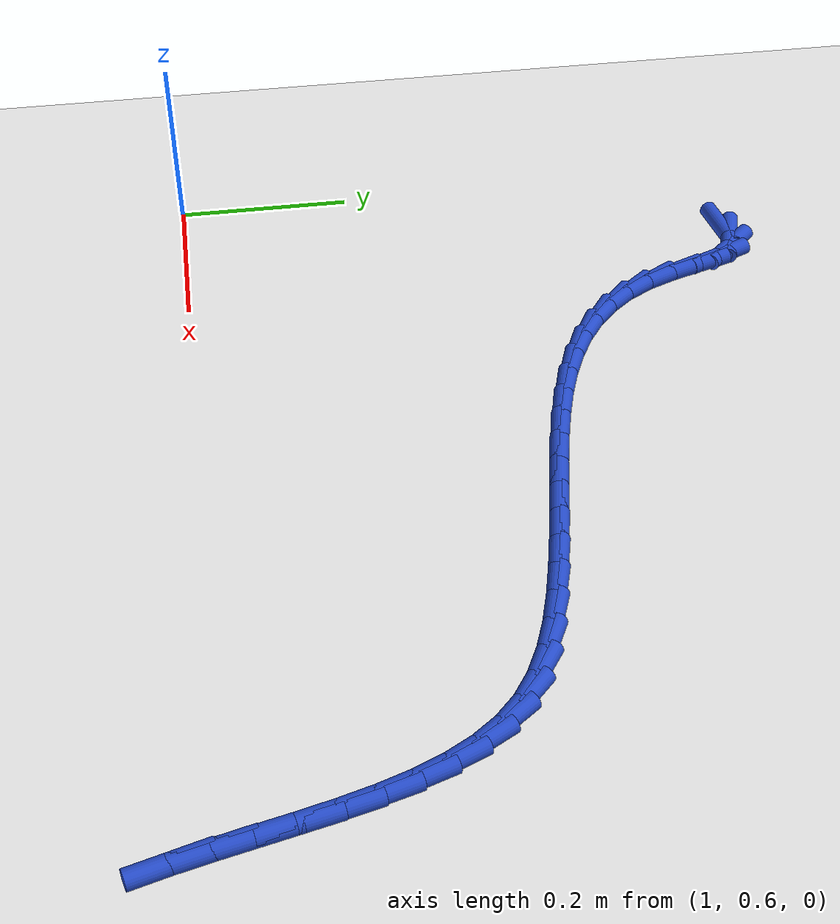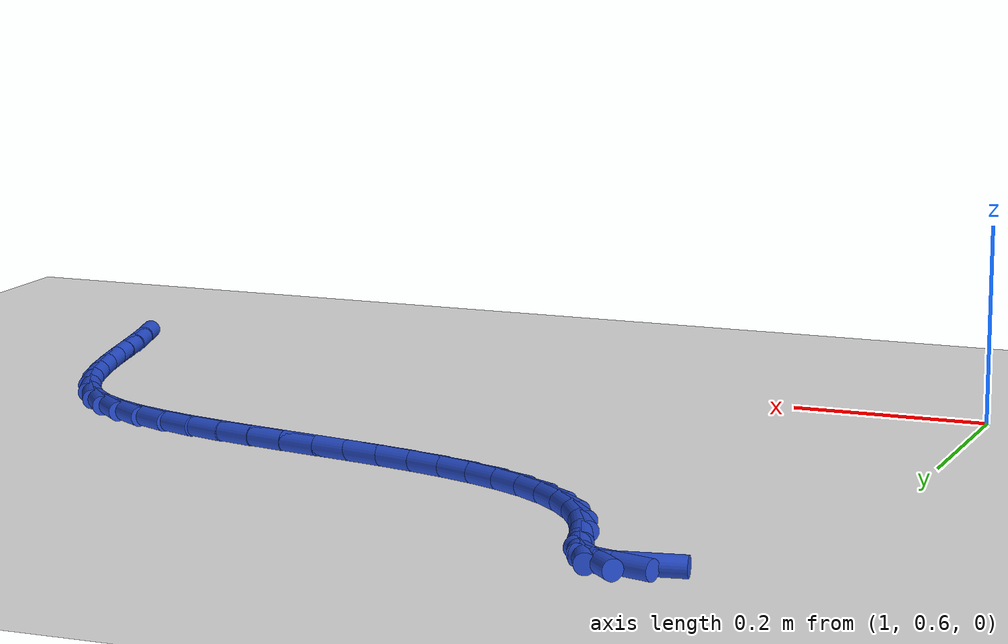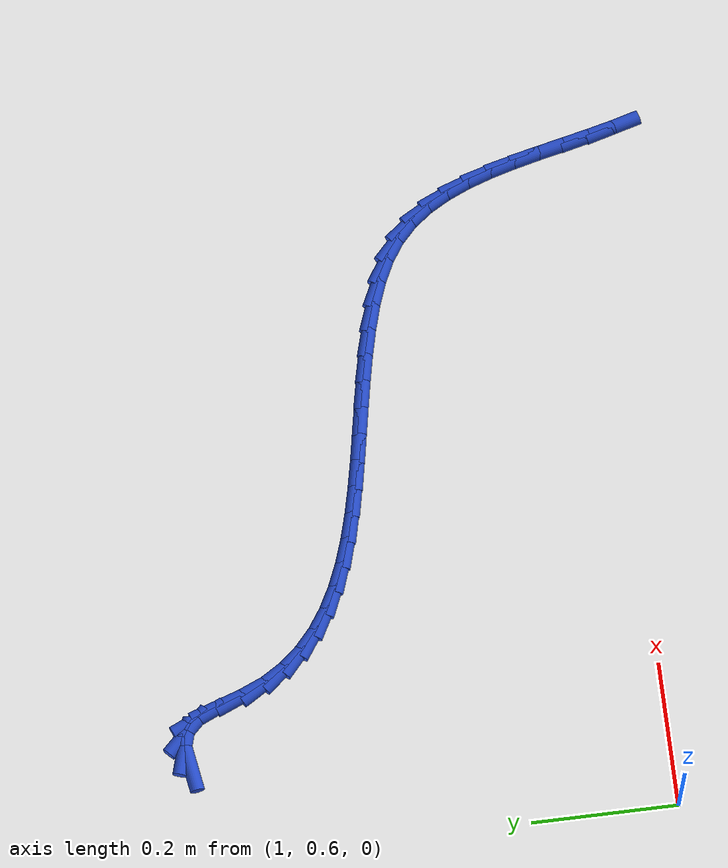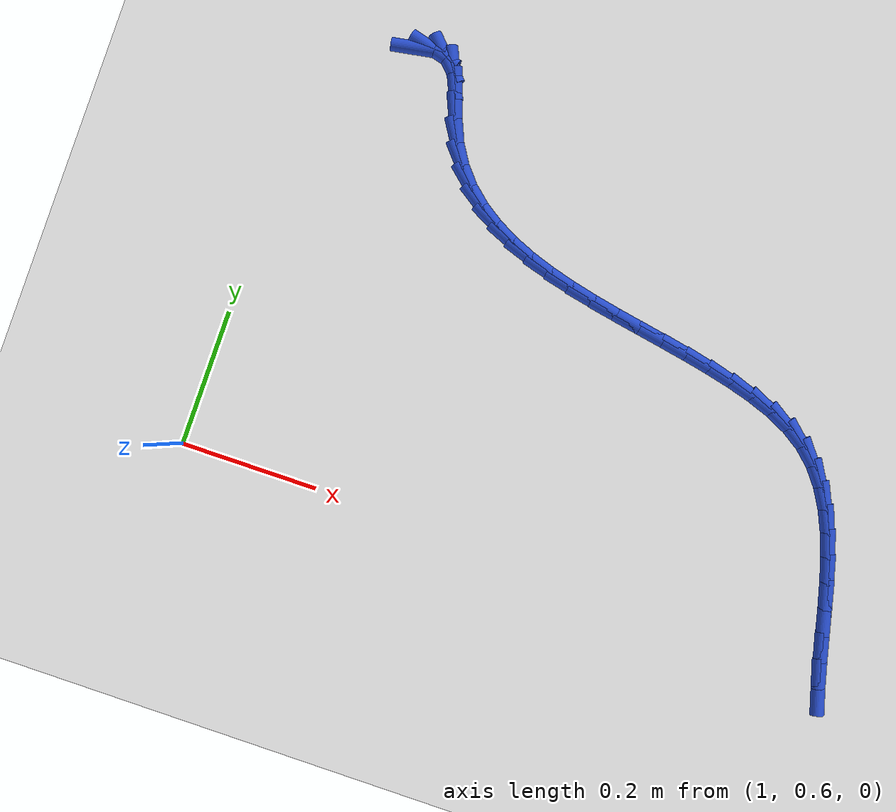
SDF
<sdf version="1.6">
 <world name="default">
  <model name="ground_plane">
   <static>1</static>
   <link name="link">
    <collision name="collision">
     <geometry><plane><normal>0 0 1</normal><size>100 100</size></plane></geometry>
     <surface><friction><ode><mu>100</mu><mu2>50</mu2></ode></friction></surface>
    </collision>
    <visual name="visual">
     <cast_shadows>0</cast_shadows>
     <geometry><plane><normal>0 0 1</normal><size>100 100</size></plane></geometry>
     <material>
      <script><uri>file://media/materials/scripts/gazebo.material</uri><name>Gazebo/WhiteGlow</name></script>
     </material>
    </visual>
   </link>
  </model>
  <model name="line">
   <link name="link_50">
    <pose>1.1366943268793017 1.2480605219539709 0.01 0 1.57 0.1632043211630677</pose>
    <collision name="collision">
     <geometry><cylinder><radius>0.01</radius><length>0.08</length></cylinder></geometry>
    </collision>
    <visual name="visual">
     <material>
      <script><name>Gazebo/Blue</name><uri>file://media/materials/scripts/gazebo.material</uri></script>
     </material>
     <geometry><cylinder><radius>0.01</radius><length>0.08</length></cylinder></geometry>
    </visual>
   </link>
   <link name="link_51">
    <pose>1.1600082485734464 1.2518996008520658 0.01 0 1.57 -0.28168845116691477</pose>
    <collision name="collision">
     <geometry><cylinder><radius>0.01</radius><length>0.08</length></cylinder></geometry>
    </collision>
    <visual name="visual">
     <material>
      <script><name>Gazebo/Blue</name><uri>file://media/materials/scripts/gazebo.material</uri></script>
     </material>
     <geometry><cylinder><radius>0.01</radius><length>0.08</length></cylinder></geometry>
    </visual>
   </link>
   <link name="link_52">
    <pose>1.1800278871083427 1.2461062521797537 0.01 0 1.57 -0.7993350156907365</pose>
    <collision name="collision">
     <geometry><cylinder><radius>0.01</radius><length>0.08</length></cylinder></geometry>
    </collision>
    <visual name="visual">
     <material>
      <script><name>Gazebo/Blue</name><uri>file://media/materials/scripts/gazebo.material</uri></script>
     </material>
     <geometry><cylinder><radius>0.01</radius><length>0.08</length></cylinder></geometry>
    </visual>
   </link>
   <link name="link_53">
    <pose>1.1963126050058341 1.2293611730735412 0.01 0 1.57 -1.1512723161892442</pose>
    <collision name="collision">
     <geometry><cylinder><radius>0.01</radius><length>0.08</length></cylinder></geometry>
    </collision>
    <visual name="visual">
     <material>
      <script><name>Gazebo/Blue</name><uri>file://media/materials/scripts/gazebo.material</uri></script>
     </material>
     <geometry><cylinder><radius>0.01</radius><length>0.08</length></cylinder></geometry>
    </visual>
   </link>
   <link name="link_54">
    <pose>1.2088474479087175 1.2012562546108616 0.01 0 1.57 -1.2470230080012707</pose>
    <collision name="collision">
     <geometry><cylinder><radius>0.01</radius><length>0.08</length></cylinder></geometry>
    </collision>
    <visual name="visual">
     <material>
      <script><name>Gazebo/Blue</name><uri>file://media/materials/scripts/gazebo.material</uri></script>
     </material>
     <geometry><cylinder><radius>0.01</radius><length>0.08</length></cylinder></geometry>
    </visual>
   </link>
   <link name="link_55">
    <pose>1.2203006594684038 1.167126894358867 0.01 0 1.57 -1.170710706884832</pose>
    <collision name="collision">
     <geometry><cylinder><radius>0.01</radius><length>0.08</length></cylinder></geometry>
    </collision>
    <visual name="visual">
     <material>
      <script><name>Gazebo/Blue</name><uri>file://media/materials/scripts/gazebo.material</uri></script>
     </material>
     <geometry><cylinder><radius>0.01</radius><length>0.08</length></cylinder></geometry>
    </visual>
   </link>
   <link name="link_56">
    <pose>1.2342181811908284 1.1342167162110688 0.01 0 1.57 -1.020286848414421</pose>
    <collision name="collision">
     <geometry><cylinder><radius>0.01</radius><length>0.08</length></cylinder></geometry>
    </collision>
    <visual name="visual">
     <material>
      <script><name>Gazebo/Blue</name><uri>file://media/materials/scripts/gazebo.material</uri></script>
     </material>
     <geometry><cylinder><radius>0.01</radius><length>0.08</length></cylinder></geometry>
    </visual>
   </link>
   <link name="link_57">
    <pose>1.2519129534556381 1.1053887802179643 0.01 0 1.57 -0.8687714558804847</pose>
    <collision name="collision">
     <geometry><cylinder><radius>0.01</radius><length>0.08</length></cylinder></geometry>
    </collision>
    <visual name="visual">
     <material>
      <script><name>Gazebo/Blue</name><uri>file://media/materials/scripts/gazebo.material</uri></script>
     </material>
     <geometry><cylinder><radius>0.01</radius><length>0.08</length></cylinder></geometry>
    </visual>
   </link>
   <link name="link_58">
    <pose>1.27308937787317 1.0803503157168026 0.01 0 1.57 -0.7263460380362501</pose>
    <collision name="collision">
     <geometry><cylinder><radius>0.01</radius><length>0.08</length></cylinder></geometry>
    </collision>
    <visual name="visual">
     <material>
      <script><name>Gazebo/Blue</name><uri>file://media/materials/scripts/gazebo.material</uri></script>
     </material>
     <geometry><cylinder><radius>0.01</radius><length>0.08</length></cylinder></geometry>
    </visual>
   </link>
   <link name="link_59">
    <pose>1.297416472338468 1.0587391318868649 0.01 0 1.57 -0.5993468259165707</pose>
    <collision name="collision">
     <geometry><cylinder><radius>0.01</radius><length>0.08</length></cylinder></geometry>
    </collision>
    <visual name="visual">
     <material>
      <script><name>Gazebo/Blue</name><uri>file://media/materials/scripts/gazebo.material</uri></script>
     </material>
     <geometry><cylinder><radius>0.01</radius><length>0.08</length></cylinder></geometry>
    </visual>
   </link>
   <link name="link_60">
    <pose>1.3245632547465773 1.0401930379074333 0.01 0 1.57 -0.4909446182707565</pose>
    <collision name="collision">
     <geometry><cylinder><radius>0.01</radius><length>0.08</length></cylinder></geometry>
    </collision>
    <visual name="visual">
     <material>
      <script><name>Gazebo/Blue</name><uri>file://media/materials/scripts/gazebo.material</uri></script>
     </material>
     <geometry><cylinder><radius>0.01</radius><length>0.08</length></cylinder></geometry>
    </visual>
   </link>
   <link name="link_61">
    <pose>1.3541987429925422 1.02434984295779 0.01 0 1.57 -0.4016141087658761</pose>
    <collision name="collision">
     <geometry><cylinder><radius>0.01</radius><length>0.08</length></cylinder></geometry>
    </collision>
    <visual name="visual">
     <material>
      <script><name>Gazebo/Blue</name><uri>file://media/materials/scripts/gazebo.material</uri></script>
     </material>
     <geometry><cylinder><radius>0.01</radius><length>0.08</length></cylinder></geometry>
    </visual>
   </link>
   <link name="link_62">
    <pose>1.3859919549714088 1.0108473562172167 0.01 0 1.57 -0.33022091602826725</pose>
    <collision name="collision">
     <geometry><cylinder><radius>0.01</radius><length>0.08</length></cylinder></geometry>
    </collision>
    <visual name="visual">
     <material>
      <script><name>Gazebo/Blue</name><uri>file://media/materials/scripts/gazebo.material</uri></script>
     </material>
     <geometry><cylinder><radius>0.01</radius><length>0.08</length></cylinder></geometry>
    </visual>
   </link>
   <link name="link_63">
    <pose>1.4196119085782217 0.999323386864995 0.01 0 1.57 -0.2749945384267629</pose>
    <collision name="collision">
     <geometry><cylinder><radius>0.01</radius><length>0.08</length></cylinder></geometry>
    </collision>
    <visual name="visual">
     <material>
      <script><name>Gazebo/Blue</name><uri>file://media/materials/scripts/gazebo.material</uri></script>
     </material>
     <geometry><cylinder><radius>0.01</radius><length>0.08</length></cylinder></geometry>
    </visual>
   </link>
   <link name="link_64">
    <pose>1.4547276217080256 0.9894157440804076 0.01 0 1.57 -0.23414210269544694</pose>
    <collision name="collision">
     <geometry><cylinder><radius>0.01</radius><length>0.08</length></cylinder></geometry>
    </collision>
    <visual name="visual">
     <material>
      <script><name>Gazebo/Blue</name><uri>file://media/materials/scripts/gazebo.material</uri></script>
     </material>
     <geometry><cylinder><radius>0.01</radius><length>0.08</length></cylinder></geometry>
    </visual>
   </link>
   <link name="link_65">
    <pose>1.4910081122558652 0.9807622370427358 0.01 0 1.57 -0.20615496180572326</pose>
    <collision name="collision">
     <geometry><cylinder><radius>0.01</radius><length>0.08</length></cylinder></geometry>
    </collision>
    <visual name="visual">
     <material>
      <script><name>Gazebo/Blue</name><uri>file://media/materials/scripts/gazebo.material</uri></script>
     </material>
     <geometry><cylinder><radius>0.01</radius><length>0.08</length></cylinder></geometry>
    </visual>
   </link>
   <link name="link_66">
    <pose>1.528122398116786 0.9730006749312611 0.01 0 1.57 -0.18993061982486512</pose>
    <collision name="collision">
     <geometry><cylinder><radius>0.01</radius><length>0.08</length></cylinder></geometry>
    </collision>
    <visual name="visual">
     <material>
      <script><name>Gazebo/Blue</name><uri>file://media/materials/scripts/gazebo.material</uri></script>
     </material>
     <geometry><cylinder><radius>0.01</radius><length>0.08</length></cylinder></geometry>
    </visual>
   </link>
   <link name="link_67">
    <pose>1.5657394971858325 0.9657688669252662 0.01 0 1.57 -0.18480645672734122</pose>
    <collision name="collision">
     <geometry><cylinder><radius>0.01</radius><length>0.08</length></cylinder></geometry>
    </collision>
    <visual name="visual">
     <material>
      <script><name>Gazebo/Blue</name><uri>file://media/materials/scripts/gazebo.material</uri></script>
     </material>
     <geometry><cylinder><radius>0.01</radius><length>0.08</length></cylinder></geometry>
    </visual>
   </link>
   <link name="link_68">
    <pose>1.60352842735805 0.9587046222040325 0.01 0 1.57 -0.1905616601111022</pose>
    <collision name="collision">
     <geometry><cylinder><radius>0.01</radius><length>0.08</length></cylinder></geometry>
    </collision>
    <visual name="visual">
     <material>
      <script><name>Gazebo/Blue</name><uri>file://media/materials/scripts/gazebo.material</uri></script>
     </material>
     <geometry><cylinder><radius>0.01</radius><length>0.08</length></cylinder></geometry>
    </visual>
   </link>
   <link name="link_69">
    <pose>1.6411582065284833 0.951445749946842 0.01 0 1.57 -0.20741417829386574</pose>
    <collision name="collision">
     <geometry><cylinder><radius>0.01</radius><length>0.08</length></cylinder></geometry>
    </collision>
    <visual name="visual">
     <material>
      <script><name>Gazebo/Blue</name><uri>file://media/materials/scripts/gazebo.material</uri></script>
     </material>
     <geometry><cylinder><radius>0.01</radius><length>0.08</length></cylinder></geometry>
    </visual>
   </link>
   <link name="link_70">
    <pose>1.678297852592178 0.9436300593329772 0.01 0 1.57 -0.23604567205010119</pose>
    <collision name="collision">
     <geometry><cylinder><radius>0.01</radius><length>0.08</length></cylinder></geometry>
    </collision>
    <visual name="visual">
     <material>
      <script><name>Gazebo/Blue</name><uri>file://media/materials/scripts/gazebo.material</uri></script>
     </material>
     <geometry><cylinder><radius>0.01</radius><length>0.08</length></cylinder></geometry>
    </visual>
   </link>
   <link name="link_71">
    <pose>1.7146153330380787 0.9348946304759581 0.01 0 1.57 -0.2807157546478752</pose>
    <collision name="collision">
     <geometry><cylinder><radius>0.01</radius><length>0.08</length></cylinder></geometry>
    </collision>
    <visual name="visual">
     <material>
      <script><name>Gazebo/Blue</name><uri>file://media/materials/scripts/gazebo.material</uri></script>
     </material>
     <geometry><cylinder><radius>0.01</radius><length>0.08</length></cylinder></geometry>
    </visual>
   </link>
   <link name="link_72">
    <pose>1.7496559353815317 0.9247913937854075 0.01 0 1.57 -0.35027326022431576</pose>
    <collision name="collision">
     <geometry><cylinder><radius>0.01</radius><length>0.08</length></cylinder></geometry>
    </collision>
    <visual name="visual">
     <material>
      <script><name>Gazebo/Blue</name><uri>file://media/materials/scripts/gazebo.material</uri></script>
     </material>
     <geometry><cylinder><radius>0.01</radius><length>0.08</length></cylinder></geometry>
    </visual>
   </link>
   <link name="link_73">
    <pose>1.7827290250065377 0.9127085308614429 0.01 0 1.57 -0.450366587782036</pose>
    <collision name="collision">
     <geometry><cylinder><radius>0.01</radius><length>0.08</length></cylinder></geometry>
    </collision>
    <visual name="visual">
     <material>
      <script><name>Gazebo/Blue</name><uri>file://media/materials/scripts/gazebo.material</uri></script>
     </material>
     <geometry><cylinder><radius>0.01</radius><length>0.08</length></cylinder></geometry>
    </visual>
   </link>
   <link name="link_74">
    <pose>1.8131171851819345 0.8980156343763492 0.01 0 1.57 -0.5865335939904592</pose>
    <collision name="collision">
     <geometry><cylinder><radius>0.01</radius><length>0.08</length></cylinder></geometry>
    </collision>
    <visual name="visual">
     <material>
      <script><name>Gazebo/Blue</name><uri>file://media/materials/scripts/gazebo.material</uri></script>
     </material>
     <geometry><cylinder><radius>0.01</radius><length>0.08</length></cylinder></geometry>
    </visual>
   </link>
   <link name="link_75">
    <pose>1.8401029991765587 0.8800822970024091 0.01 0 1.57 -0.7551102985365309</pose>
    <collision name="collision">
     <geometry><cylinder><radius>0.01</radius><length>0.08</length></cylinder></geometry>
    </collision>
    <visual name="visual">
     <material>
      <script><name>Gazebo/Blue</name><uri>file://media/materials/scripts/gazebo.material</uri></script>
     </material>
     <geometry><cylinder><radius>0.01</radius><length>0.08</length></cylinder></geometry>
    </visual>
   </link>
   <link name="link_76">
    <pose>1.863123930709332 0.8584152819881397 0.01 0 1.57 -0.916178957604789</pose>
    <collision name="collision">
     <geometry><cylinder><radius>0.01</radius><length>0.08</length></cylinder></geometry>
    </collision>
    <visual name="visual">
     <material>
      <script><name>Gazebo/Blue</name><uri>file://media/materials/scripts/gazebo.material</uri></script>
     </material>
     <geometry><cylinder><radius>0.01</radius><length>0.08</length></cylinder></geometry>
    </visual>
   </link>
   <link name="link_77">
    <pose>1.8824392841267459 0.8332492194780702 0.01 0 1.57 -1.050793132851884</pose>
    <collision name="collision">
     <geometry><cylinder><radius>0.01</radius><length>0.08</length></cylinder></geometry>
    </collision>
    <visual name="visual">
     <material>
      <script><name>Gazebo/Blue</name><uri>file://media/materials/scripts/gazebo.material</uri></script>
     </material>
     <geometry><cylinder><radius>0.01</radius><length>0.08</length></cylinder></geometry>
    </visual>
   </link>
   <link name="link_78">
    <pose>1.8985799115584474 0.8050592371480175 0.01 0 1.57 -1.1570547523777324</pose>
    <collision name="collision">
     <geometry><cylinder><radius>0.01</radius><length>0.08</length></cylinder></geometry>
    </collision>
    <visual name="visual">
     <material>
      <script><name>Gazebo/Blue</name><uri>file://media/materials/scripts/gazebo.material</uri></script>
     </material>
     <geometry><cylinder><radius>0.01</radius><length>0.08</length></cylinder></geometry>
    </visual>
   </link>
   <link name="link_79">
    <pose>1.912076836443678 0.7743206143949226 0.01 0 1.57 -1.2368377543593658</pose>
    <collision name="collision">
     <geometry><cylinder><radius>0.01</radius><length>0.08</length></cylinder></geometry>
    </collision>
    <visual name="visual">
     <material>
      <script><name>Gazebo/Blue</name><uri>file://media/materials/scripts/gazebo.material</uri></script>
     </material>
     <geometry><cylinder><radius>0.01</radius><length>0.08</length></cylinder></geometry>
    </visual>
   </link>
   <link name="link_80">
    <pose>1.9234610822216767 0.7415086306157266 0.01 0 1.57 -1.2932721722002283</pose>
    <collision name="collision">
     <geometry><cylinder><radius>0.01</radius><length>0.08</length></cylinder></geometry>
    </collision>
    <visual name="visual">
     <material>
      <script><name>Gazebo/Blue</name><uri>file://media/materials/scripts/gazebo.material</uri></script>
     </material>
     <geometry><cylinder><radius>0.01</radius><length>0.08</length></cylinder></geometry>
    </visual>
   </link>
   <link name="link_81">
    <pose>1.9332636723316874 0.7070985652073702 0.01 0 1.57 -1.3292973963451062</pose>
    <collision name="collision">
     <geometry><cylinder><radius>0.01</radius><length>0.08</length></cylinder></geometry>
    </collision>
    <visual name="visual">
     <material>
      <script><name>Gazebo/Blue</name><uri>file://media/materials/scripts/gazebo.material</uri></script>
     </material>
     <geometry><cylinder><radius>0.01</radius><length>0.08</length></cylinder></geometry>
    </visual>
   </link>
   <link name="link_82">
    <pose>1.94201563021295 0.6715656975667935 0.01 0 1.57 -1.3470691940154367</pose>
    <collision name="collision">
     <geometry><cylinder><radius>0.01</radius><length>0.08</length></cylinder></geometry>
    </collision>
    <visual name="visual">
     <material>
      <script><name>Gazebo/Blue</name><uri>file://media/materials/scripts/gazebo.material</uri></script>
     </material>
     <geometry><cylinder><radius>0.01</radius><length>0.08</length></cylinder></geometry>
    </visual>
   </link>
   <link name="link_83">
    <pose>1.9502479793047063 0.6353853070909382 0.01 0 1.57 -1.3477957997203838</pose>
    <collision name="collision">
     <geometry><cylinder><radius>0.01</radius><length>0.08</length></cylinder></geometry>
    </collision>
    <visual name="visual">
     <material>
      <script><name>Gazebo/Blue</name><uri>file://media/materials/scripts/gazebo.material</uri></script>
     </material>
     <geometry><cylinder><radius>0.01</radius><length>0.08</length></cylinder></geometry>
    </visual>
   </link>
   <link name="link_84">
    <pose>1.9584917430461963 0.5990326731767445 0.01 0 1.57 -1.331731854521824</pose>
    <collision name="collision">
     <geometry><cylinder><radius>0.01</radius><length>0.08</length></cylinder></geometry>
    </collision>
    <visual name="visual">
     <material>
      <script><name>Gazebo/Blue</name><uri>file://media/materials/scripts/gazebo.material</uri></script>
     </material>
     <geometry><cylinder><radius>0.01</radius><length>0.08</length></cylinder></geometry>
    </visual>
   </link>
   <link name="link_85">
    <pose>1.9672779448766622 0.5629830752211528 0.01 0 1.57 -1.29977069658318</pose>
    <collision name="collision">
     <geometry><cylinder><radius>0.01</radius><length>0.08</length></cylinder></geometry>
    </collision>
    <visual name="visual">
     <material>
      <script><name>Gazebo/Blue</name><uri>file://media/materials/scripts/gazebo.material</uri></script>
     </material>
     <geometry><cylinder><radius>0.01</radius><length>0.08</length></cylinder></geometry>
    </visual>
   </link>
  </model>
 </world>
</sdf>
